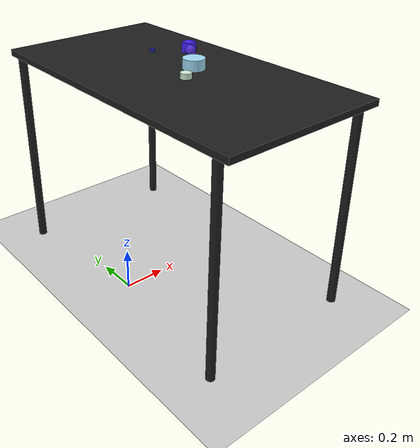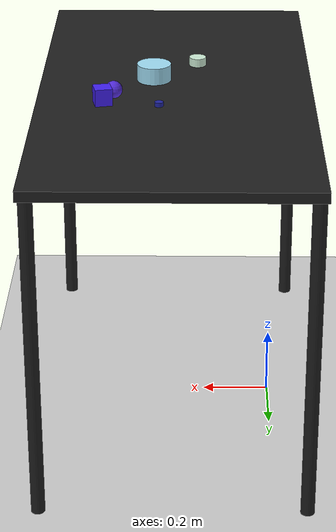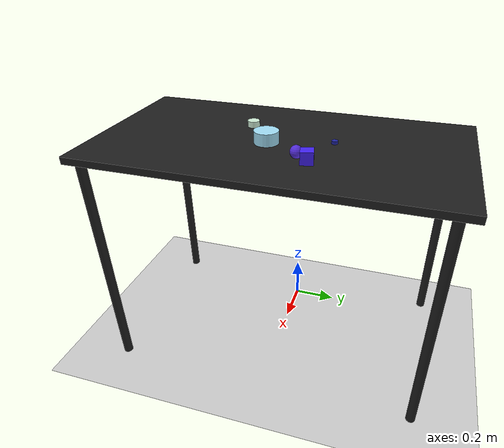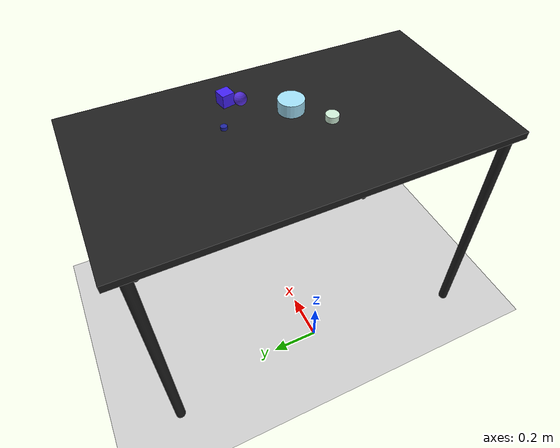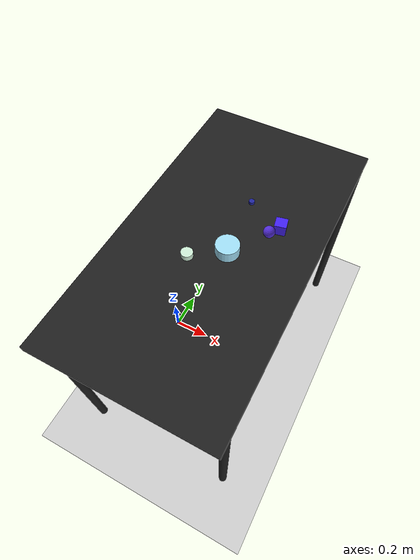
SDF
<?xml version="1.0" ?>
<sdf version="1.6">
  <world name="arm_world">
    <plugin filename="gz-sim-physics-system" name="gz::sim::systems::Physics">
      <engine>
        <filename>libgz-physics-bullet-featherstone-plugin.so</filename>
      </engine>
    </plugin>
    <plugin filename="gz-sim-user-commands-system" name="gz::sim::systems::UserCommands"/>
    <plugin filename="gz-sim-scene-broadcaster-system" name="gz::sim::systems::SceneBroadcaster"/>
    <plugin filename="gz-sim-sensors-system" name="gz::sim::systems::Sensors">
      <render_engine>ogre2</render_engine>
    </plugin>
    <gravity>0.0 0.0 -9.8</gravity>
    <scene>
      <shadows>false</shadows>
    </scene>
    <gui>
      <camera name="user_camera">
        <pose>0.75 -0.75 1.4 0 0.29 2.21</pose>
      </camera>
    </gui>
    <include>
      <uri>https://fuel.gazebosim.org/1.0/OpenRobotics/models/Sun</uri>
    </include>
    <model name="table">
      <static>true</static>
      <include>
        <uri>model://table</uri>
      </include>
      <pose>0.29 0 0 0 0 1.5708</pose>
    </model>
    <model name="ground_plane">
      <static>true</static>
      <link name="link">
        <collision name="collision">
          <geometry>
            <plane>
              <normal>0 0 1</normal>
            </plane>
          </geometry>
          <surface>
            <friction>
              <ode>
                <mu>1.0</mu>
                <mu2>1.0</mu2>
              </ode>
            </friction>
          </surface>
        </collision>
        <visual name="visual">
          <geometry>
            <plane>
              <normal>0 0 1</normal>
              <size>100 100</size>
            </plane>
          </geometry>
          <material>
            <ambient>0.8 0.8 0.8 1</ambient>
            <diffuse>0.8 0.8 0.8 1</diffuse>
            <specular>0.8 0.8 0.8 1</specular>
          </material>
        </visual>
      </link>
    </model>
    <model name="cylinder_m_0">
      <pose>0.226 -0.145 1.05 0 0 4.15</pose>
      <link name="cylinder_m_0_link">
        <inertial>
          <mass>0.05</mass>
          <inertia>
            <ixx>2.04e-7</ixx>
            <iyy>2.04e-7</iyy>
            <izz>3.9e-8</izz>
            <ixy>0</ixy>
            <ixz>0</ixz>
            <iyz>0</iyz>
          </inertia>
        </inertial>
        <collision name="cylinder_m_0_collision">
          <geometry>
            <cylinder>
              <radius>0.025</radius>
              <length>0.025</length>
            </cylinder>
          </geometry>
          <surface>
            <friction>
              <ode>
                <mu>0.8</mu>
                <mu2>0.8</mu2>
                <fdir1>0 0 1</fdir1>
                <slip1>0.001</slip1>
                <slip2>0.001</slip2>
              </ode>
              <torsional>
                <coefficient>0.1</coefficient>
                <surface_radius>0.015</surface_radius>
                <use_patch_radius>true</use_patch_radius>
              </torsional>
            </friction>
            <contact>
              <ode>
                <kp>1e5</kp>
                <kd>10</kd>
                <max_vel>0.1</max_vel>
                <min_depth>0.001</min_depth>
                <soft_cfm>0.01</soft_cfm>
                <soft_erp>0.2</soft_erp>
              </ode>
            </contact>
            <bounce>
              <restitution_coefficient>0.2</restitution_coefficient>
              <threshold>0.01</threshold>
            </bounce>
          </surface>
        </collision>
        <visual name="cylinder_m_0_visual">
          <geometry>
            <cylinder>
              <radius>0.025</radius>
              <length>0.025</length>
            </cylinder>
          </geometry>
          <material>
            <ambient>0.81 0.93 0.84 1</ambient>
            <diffuse>0.81 0.93 0.84 1</diffuse>
          </material>
        </visual>
        <velocity_decay>
          <linear>1</linear>
          <angular>1</angular>
        </velocity_decay>
      </link>
    </model>
    <model name="cylinder_s_1">
      <pose>0.334 0.219 1.05 0 0 0.3</pose>
      <link name="cylinder_s_1_link">
        <inertial>
          <mass>0.05</mass>
          <inertia>
            <ixx>2.04e-7</ixx>
            <iyy>2.04e-7</iyy>
            <izz>3.9e-8</izz>
            <ixy>0</ixy>
            <ixz>0</ixz>
            <iyz>0</iyz>
          </inertia>
        </inertial>
        <collision name="cylinder_s_1_collision">
          <geometry>
            <cylinder>
              <radius>0.0125</radius>
              <length>0.0125</length>
            </cylinder>
          </geometry>
          <surface>
            <friction>
              <ode>
                <mu>0.8</mu>
                <mu2>0.8</mu2>
                <fdir1>0 0 1</fdir1>
                <slip1>0.001</slip1>
                <slip2>0.001</slip2>
              </ode>
              <torsional>
                <coefficient>0.1</coefficient>
                <surface_radius>0.015</surface_radius>
                <use_patch_radius>true</use_patch_radius>
              </torsional>
            </friction>
            <contact>
              <ode>
                <kp>1e5</kp>
                <kd>10</kd>
                <max_vel>0.1</max_vel>
                <min_depth>0.001</min_depth>
                <soft_cfm>0.01</soft_cfm>
                <soft_erp>0.2</soft_erp>
              </ode>
            </contact>
            <bounce>
              <restitution_coefficient>0.2</restitution_coefficient>
              <threshold>0.01</threshold>
            </bounce>
          </surface>
        </collision>
        <visual name="cylinder_s_1_visual">
          <geometry>
            <cylinder>
              <radius>0.0125</radius>
              <length>0.0125</length>
            </cylinder>
          </geometry>
          <material>
            <ambient>0.12 0.14 0.62 1</ambient>
            <diffuse>0.12 0.14 0.62 1</diffuse>
          </material>
        </visual>
        <velocity_decay>
          <linear>1</linear>
          <angular>1</angular>
        </velocity_decay>
      </link>
    </model>
    <model name="cube_m_2">
      <pose>0.496 0.152 1.05 0 0 0.21</pose>
      <link name="cube_m_2_link">
        <inertial>
          <mass>0.05</mass>
          <inertia>
            <ixx>2.04e-7</ixx>
            <iyy>2.04e-7</iyy>
            <izz>3.9e-8</izz>
            <ixy>0</ixy>
            <ixz>0</ixz>
            <iyz>0</iyz>
          </inertia>
        </inertial>
        <collision name="cube_m_2_collision">
          <geometry>
            <box>
              <size>0.05 0.05 0.05</size>
            </box>
          </geometry>
          <surface>
            <friction>
              <ode>
                <mu>0.8</mu>
                <mu2>0.8</mu2>
                <fdir1>0 0 1</fdir1>
                <slip1>0.001</slip1>
                <slip2>0.001</slip2>
              </ode>
              <torsional>
                <coefficient>0.1</coefficient>
                <surface_radius>0.015</surface_radius>
                <use_patch_radius>true</use_patch_radius>
              </torsional>
            </friction>
            <contact>
              <ode>
                <kp>1e5</kp>
                <kd>10</kd>
                <max_vel>0.1</max_vel>
                <min_depth>0.001</min_depth>
                <soft_cfm>0.01</soft_cfm>
                <soft_erp>0.2</soft_erp>
              </ode>
            </contact>
            <bounce>
              <restitution_coefficient>0.2</restitution_coefficient>
              <threshold>0.01</threshold>
            </bounce>
          </surface>
        </collision>
        <visual name="cube_m_2_visual">
          <geometry>
            <box>
              <size>0.05 0.05 0.05</size>
            </box>
          </geometry>
          <material>
            <ambient>0.26 0.13 0.95 1</ambient>
            <diffuse>0.26 0.13 0.95 1</diffuse>
          </material>
        </visual>
        <velocity_decay>
          <linear>1</linear>
          <angular>1</angular>
        </velocity_decay>
      </link>
    </model>
    <model name="cylinder_l_3">
      <pose>0.354 -0.047 1.05 0 0 2.92</pose>
      <link name="cylinder_l_3_link">
        <inertial>
          <mass>0.05</mass>
          <inertia>
            <ixx>2.04e-7</ixx>
            <iyy>2.04e-7</iyy>
            <izz>3.9e-8</izz>
            <ixy>0</ixy>
            <ixz>0</ixz>
            <iyz>0</iyz>
          </inertia>
        </inertial>
        <collision name="cylinder_l_3_collision">
          <geometry>
            <cylinder>
              <radius>0.05</radius>
              <length>0.05</length>
            </cylinder>
          </geometry>
          <surface>
            <friction>
              <ode>
                <mu>0.8</mu>
                <mu2>0.8</mu2>
                <fdir1>0 0 1</fdir1>
                <slip1>0.001</slip1>
                <slip2>0.001</slip2>
              </ode>
              <torsional>
                <coefficient>0.1</coefficient>
                <surface_radius>0.015</surface_radius>
                <use_patch_radius>true</use_patch_radius>
              </torsional>
            </friction>
            <contact>
              <ode>
                <kp>1e5</kp>
                <kd>10</kd>
                <max_vel>0.1</max_vel>
                <min_depth>0.001</min_depth>
                <soft_cfm>0.01</soft_cfm>
                <soft_erp>0.2</soft_erp>
              </ode>
            </contact>
            <bounce>
              <restitution_coefficient>0.2</restitution_coefficient>
              <threshold>0.01</threshold>
            </bounce>
          </surface>
        </collision>
        <visual name="cylinder_l_3_visual">
          <geometry>
            <cylinder>
              <radius>0.05</radius>
              <length>0.05</length>
            </cylinder>
          </geometry>
          <material>
            <ambient>0.63 0.87 0.96 1</ambient>
            <diffuse>0.63 0.87 0.96 1</diffuse>
          </material>
        </visual>
        <velocity_decay>
          <linear>1</linear>
          <angular>1</angular>
        </velocity_decay>
      </link>
    </model>
    <model name="sphere_m_4">
      <pose>0.466 0.105 1.05 0 0 2.44</pose>
      <link name="sphere_m_4_link">
        <inertial>
          <mass>0.05</mass>
          <inertia>
            <ixx>2.04e-7</ixx>
            <iyy>2.04e-7</iyy>
            <izz>3.9e-8</izz>
            <ixy>0</ixy>
            <ixz>0</ixz>
            <iyz>0</iyz>
          </inertia>
        </inertial>
        <collision name="sphere_m_4_collision">
          <geometry>
            <sphere>
              <radius>0.025</radius>
            </sphere>
          </geometry>
          <surface>
            <friction>
              <ode>
                <mu>0.8</mu>
                <mu2>0.8</mu2>
                <fdir1>0 0 1</fdir1>
                <slip1>0.001</slip1>
                <slip2>0.001</slip2>
              </ode>
              <torsional>
                <coefficient>0.1</coefficient>
                <surface_radius>0.015</surface_radius>
                <use_patch_radius>true</use_patch_radius>
              </torsional>
            </friction>
            <contact>
              <ode>
                <kp>1e5</kp>
                <kd>10</kd>
                <max_vel>0.1</max_vel>
                <min_depth>0.001</min_depth>
                <soft_cfm>0.01</soft_cfm>
                <soft_erp>0.2</soft_erp>
              </ode>
            </contact>
            <bounce>
              <restitution_coefficient>0.2</restitution_coefficient>
              <threshold>0.01</threshold>
            </bounce>
          </surface>
        </collision>
        <visual name="sphere_m_4_visual">
          <geometry>
            <sphere>
              <radius>0.025</radius>
            </sphere>
          </geometry>
          <material>
            <ambient>0.32 0.17 0.84 1</ambient>
            <diffuse>0.32 0.17 0.84 1</diffuse>
          </material>
        </visual>
        <velocity_decay>
          <linear>1</linear>
          <angular>1</angular>
        </velocity_decay>
      </link>
    </model>
  </world>
</sdf>

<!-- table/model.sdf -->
<sdf version="1.5">
  <model name="table">
    <static>true</static>
    <link name="link">
      <collision name="surface">
        <pose>0 0 1.0 0 0 0</pose>
        <geometry>
          <box>
            <size>1.5 0.8 0.03</size>
          </box>
        </geometry>
        <surface>
          <friction>
            <ode>
              <mu>0.6</mu>
              <mu2>0.6</mu2>
            </ode>
          </friction>
        </surface>
      </collision>
      <visual name="surface">
        <pose>0 0 1.0 0 0 0</pose>
        <geometry>
          <box>
            <size>1.5 0.8 0.03</size>
          </box>
        </geometry>
        <material>
          <script>
            <uri>file://media/materials/scripts/gazebo.material</uri>
            <name>Gazebo/Black</name>
          </script>
        </material>
      </visual>
      <collision name="front_left_leg">
        <pose>0.68 0.38 0.5 0 0 0</pose>
        <geometry>
          <cylinder>
            <radius>0.02</radius>
            <length>1.0</length>
          </cylinder>
        </geometry>
      </collision>
      <visual name="front_left_leg">
        <pose>0.68 0.38 0.5 0 0 0</pose>
        <geometry>
          <cylinder>
            <radius>0.02</radius>
            <length>1.0</length>
          </cylinder>
        </geometry>
        <material>
          <script>
            <uri>file://media/materials/scripts/gazebo.material</uri>
            <name>Gazebo/Black</name>
          </script>
        </material>
      </visual>
      <collision name="front_right_leg">
        <pose>0.68 -0.38 0.5 0 0 0</pose>
        <geometry>
          <cylinder>
            <radius>0.02</radius>
            <length>1.0</length>
          </cylinder>
        </geometry>
      </collision>
      <visual name="front_right_leg">
        <pose>0.68 -0.38 0.5 0 0 0</pose>
        <geometry>
          <cylinder>
            <radius>0.02</radius>
            <length>1.0</length>
          </cylinder>
        </geometry>
        <material>
          <script>
            <uri>file://media/materials/scripts/gazebo.material</uri>
            <name>Gazebo/Black</name>
          </script>
        </material>
      </visual>
      <collision name="back_right_leg">
        <pose>-0.68 -0.38 0.5 0 0 0</pose>
        <geometry>
          <cylinder>
            <radius>0.02</radius>
            <length>1.0</length>
          </cylinder>
        </geometry>
      </collision>
      <visual name="back_right_leg">
        <pose>-0.68 -0.38 0.5 0 0 0</pose>
        <geometry>
          <cylinder>
            <radius>0.02</radius>
            <length>1.0</length>
          </cylinder>
        </geometry>
        <material>
          <script>
            <uri>file://media/materials/scripts/gazebo.material</uri>
            <name>Gazebo/Black</name>
          </script>
        </material>
      </visual>
      <collision name="back_left_leg">
        <pose>-0.68 0.38 0.5 0 0 0</pose>
        <geometry>
          <cylinder>
            <radius>0.02</radius>
            <length>1.0</length>
          </cylinder>
        </geometry>
      </collision>
      <visual name="back_left_leg">
        <pose>-0.68 0.38 0.5 0 0 0</pose>
        <geometry>
          <cylinder>
            <radius>0.02</radius>
            <length>1.0</length>
          </cylinder>
        </geometry>
        <material>
          <script>
            <uri>file://media/materials/scripts/gazebo.material</uri>
            <name>Gazebo/Black</name>
          </script>
        </material>
      </visual>
    </link>
  </model>
</sdf>
